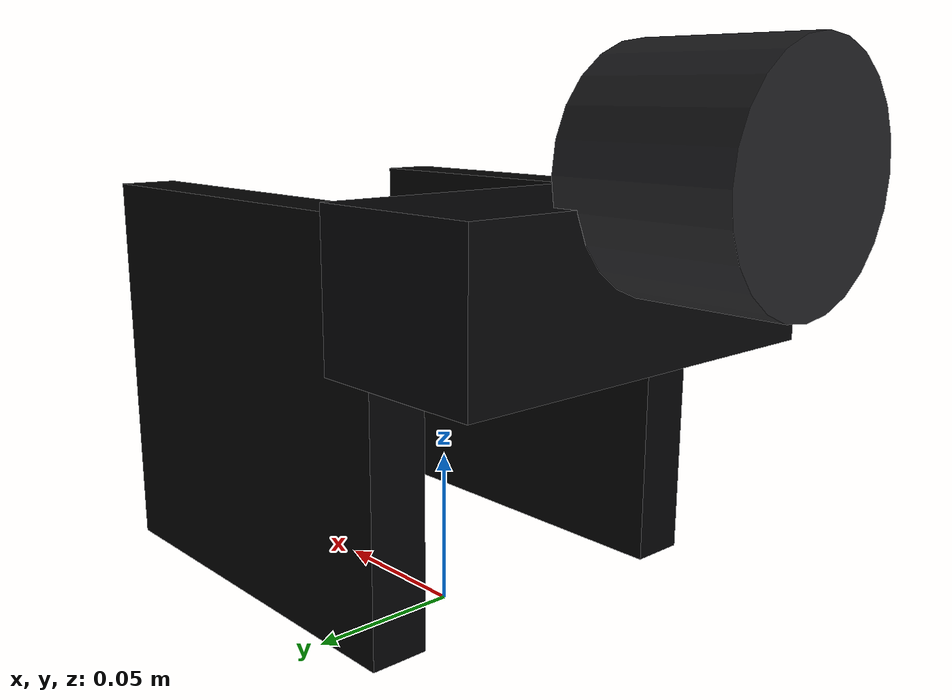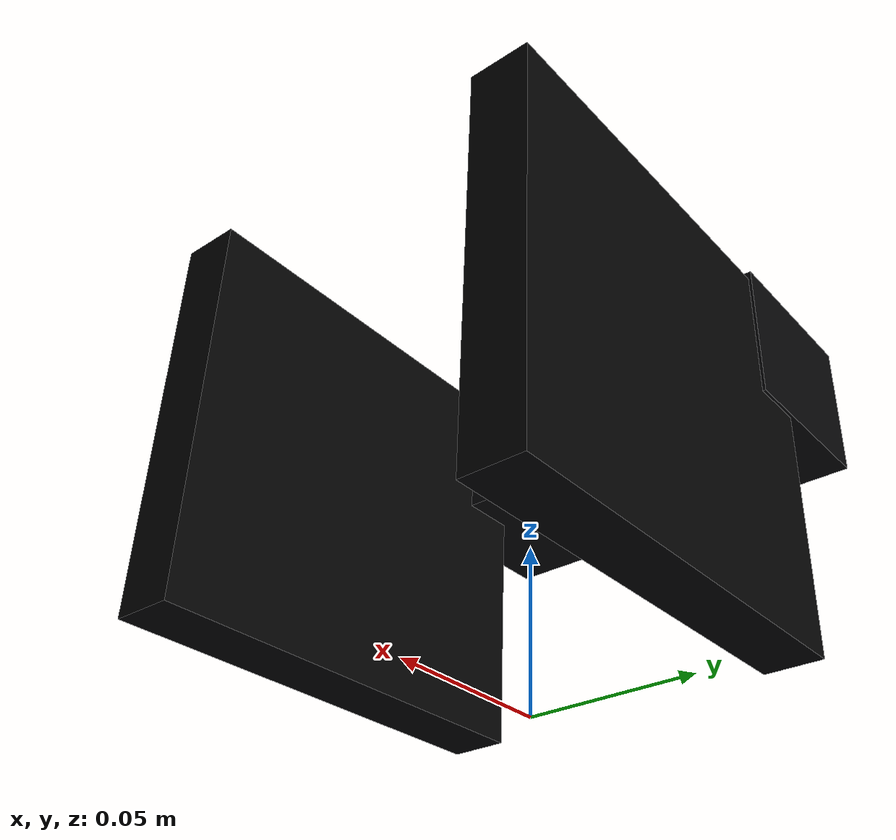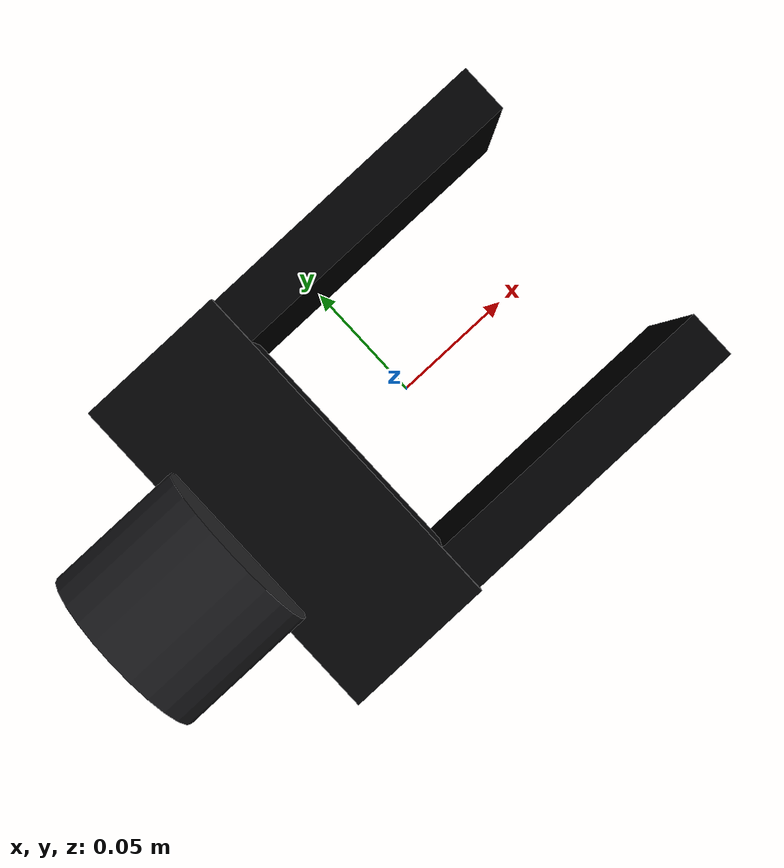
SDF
<?xml version="1.0"?>
<sdf version="1.7">
  <model name="azas_rg2_preview">
    <static>true</static>
    <link name="body">
      <visual name="palm">
        <pose>-0.055 0 0.115 0 0 0</pose>
        <geometry>
          <box>
            <size>0.055 0.130 0.045</size>
          </box>
        </geometry>
        <material>
          <ambient>0.02 0.02 0.025 1</ambient>
          <diffuse>0.02 0.02 0.025 1</diffuse>
        </material>
      </visual>
      <visual name="left_finger">
        <pose>0.020 0.055 0.075 0 0 0</pose>
        <geometry>
          <box>
            <size>0.130 0.018 0.120</size>
          </box>
        </geometry>
        <material>
          <ambient>0.01 0.01 0.012 1</ambient>
          <diffuse>0.01 0.01 0.012 1</diffuse>
        </material>
      </visual>
      <visual name="right_finger">
        <pose>0.020 -0.055 0.075 0 0 0</pose>
        <geometry>
          <box>
            <size>0.130 0.018 0.120</size>
          </box>
        </geometry>
        <material>
          <ambient>0.01 0.01 0.012 1</ambient>
          <diffuse>0.01 0.01 0.012 1</diffuse>
        </material>
      </visual>
      <visual name="mount">
        <pose>-0.100 0 0.145 0 1.57079633 0</pose>
        <geometry>
          <cylinder>
            <radius>0.032</radius>
            <length>0.050</length>
          </cylinder>
        </geometry>
        <material>
          <ambient>0.12 0.12 0.13 1</ambient>
          <diffuse>0.12 0.12 0.13 1</diffuse>
        </material>
      </visual>
      <collision name="collision">
        <pose>0 0 0.09 0 0 0</pose>
        <geometry>
          <box>
            <size>0.180 0.140 0.160</size>
          </box>
        </geometry>
      </collision>
    </link>
  </model>
</sdf>
